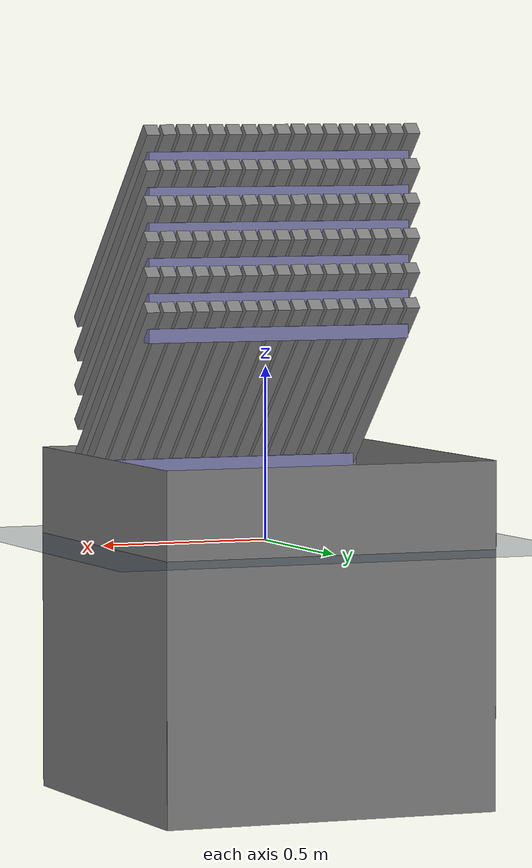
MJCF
<mujoco>
  <default>
    <default class="wall">
      <geom type="plane" size=".5 .5 .05"/>
    </default>
    <default class="plank">
      <geom type="box" size=".02 .02 .4" euler="-45 0 0"/>
      <default class="joist">
        <geom euler="0 90 0" rgba=".5 .5 .7 1"/>
      </default>
    </default>
  </default>
​
  <statistic extent="1.5" meansize=".05"/>
​
  <visual>
    <rgba haze="0.15 0.25 0.35 1"/>
    <quality shadowsize="4096"/>
    <map stiffness="700" shadowscale="0.5" fogstart="10" fogend="15" zfar="40" haze="0.3"/>
  </visual>
​
  <asset>
    <texture type="skybox" builtin="gradient" rgb1="0.3 0.5 0.7" rgb2="0 0 0" width="512" height="512"/>
    <texture name="texplane" type="2d" builtin="checker" rgb1=".2 .3 .4" rgb2=".1 0.15 0.2"
      width="512" height="512" mark="cross" markrgb=".8 .8 .8"/>
    <material name="matplane" reflectance="0.3" texture="texplane" texrepeat="1 1" texuniform="true"/>
  </asset>
​
  <worldbody>
    <light directional="true" diffuse=".4 .4 .4" specular="0.1 0.1 0.1" pos="0 0 5.0" dir="0 0 -1" castshadow="false"/>
    <light directional="true" diffuse=".6 .6 .6" specular="0.2 0.2 0.2" pos="0 0 4" dir="0 0 -1"/>
​
    <geom name="ground" type="plane" size="0 0 1" pos="0 0 0" quat="1 0 0 0" material="matplane" condim="1"/>
    <geom name="+x" class="wall" zaxis="1 0 0"  pos="-.5 0 -.25"/>
    <geom name="-x" class="wall" zaxis="-1 0 0" pos=".5 0 -.25"/>
    <geom name="+y" class="wall" zaxis="0 1 0"  pos="0 -.5 -.25"/>
    <geom name="-y" class="wall" zaxis="0 -1 0" pos="0 .5 -.25"/>
​
    <body pos="-.4 -.4 .4">
      <freejoint/>
      <geom class="plank" pos="0 .25 0"/>
      <geom class="plank" pos=".05 .25 0"/>
      <geom class="plank" pos=".10 .25 0"/>
      <geom class="plank" pos=".15 .25 0"/>
      <geom class="plank" pos=".20 .25 0"/>
      <geom class="plank" pos=".25 .25 0"/>
      <geom class="plank" pos=".30 .25 0"/>
      <geom class="plank" pos=".35 .25 0"/>
      <geom class="plank" pos=".40 .25 0"/>
      <geom class="plank" pos=".45 .25 0"/>
      <geom class="plank" pos=".50 .25 0"/>
      <geom class="plank" pos=".55 .25 0"/>
      <geom class="plank" pos=".60 .25 0"/>
      <geom class="plank" pos=".65 .25 0"/>
      <geom class="plank" pos=".70 .25 0"/>
      <geom class="plank" pos=".75 .25 0"/>
      <geom class="plank" pos=".80 .25 0"/>
      <geom class="joist" pos=".40 .09 -.2"/>
      <geom class="joist" pos=".40 .49 .2"/>
    </body>
​
    <body pos="-.4 -.4 .5">
      <freejoint/>
      <geom class="plank" pos="0 .25 0"/>
      <geom class="plank" pos=".05 .25 0"/>
      <geom class="plank" pos=".10 .25 0"/>
      <geom class="plank" pos=".15 .25 0"/>
      <geom class="plank" pos=".20 .25 0"/>
      <geom class="plank" pos=".25 .25 0"/>
      <geom class="plank" pos=".30 .25 0"/>
      <geom class="plank" pos=".35 .25 0"/>
      <geom class="plank" pos=".40 .25 0"/>
      <geom class="plank" pos=".45 .25 0"/>
      <geom class="plank" pos=".50 .25 0"/>
      <geom class="plank" pos=".55 .25 0"/>
      <geom class="plank" pos=".60 .25 0"/>
      <geom class="plank" pos=".65 .25 0"/>
      <geom class="plank" pos=".70 .25 0"/>
      <geom class="plank" pos=".75 .25 0"/>
      <geom class="plank" pos=".80 .25 0"/>
      <geom class="joist" pos=".40 .09 -.2"/>
      <geom class="joist" pos=".40 .49 .2"/>
    </body>
​
    <body pos="-.4 -.4 .6">
      <freejoint/>
      <geom class="plank" pos="0 .25 0"/>
      <geom class="plank" pos=".05 .25 0"/>
      <geom class="plank" pos=".10 .25 0"/>
      <geom class="plank" pos=".15 .25 0"/>
      <geom class="plank" pos=".20 .25 0"/>
      <geom class="plank" pos=".25 .25 0"/>
      <geom class="plank" pos=".30 .25 0"/>
      <geom class="plank" pos=".35 .25 0"/>
      <geom class="plank" pos=".40 .25 0"/>
      <geom class="plank" pos=".45 .25 0"/>
      <geom class="plank" pos=".50 .25 0"/>
      <geom class="plank" pos=".55 .25 0"/>
      <geom class="plank" pos=".60 .25 0"/>
      <geom class="plank" pos=".65 .25 0"/>
      <geom class="plank" pos=".70 .25 0"/>
      <geom class="plank" pos=".75 .25 0"/>
      <geom class="plank" pos=".80 .25 0"/>
      <geom class="joist" pos=".40 .09 -.2"/>
      <geom class="joist" pos=".40 .49 .2"/>
    </body>
​
    <body pos="-.4 -.4 .7">
      <freejoint/>
      <geom class="plank" pos="0 .25 0"/>
      <geom class="plank" pos=".05 .25 0"/>
      <geom class="plank" pos=".10 .25 0"/>
      <geom class="plank" pos=".15 .25 0"/>
      <geom class="plank" pos=".20 .25 0"/>
      <geom class="plank" pos=".25 .25 0"/>
      <geom class="plank" pos=".30 .25 0"/>
      <geom class="plank" pos=".35 .25 0"/>
      <geom class="plank" pos=".40 .25 0"/>
      <geom class="plank" pos=".45 .25 0"/>
      <geom class="plank" pos=".50 .25 0"/>
      <geom class="plank" pos=".55 .25 0"/>
      <geom class="plank" pos=".60 .25 0"/>
      <geom class="plank" pos=".65 .25 0"/>
      <geom class="plank" pos=".70 .25 0"/>
      <geom class="plank" pos=".75 .25 0"/>
      <geom class="plank" pos=".80 .25 0"/>
      <geom class="joist" pos=".40 .09 -.2"/>
      <geom class="joist" pos=".40 .49 .2"/>
    </body>
​
    <body pos="-.4 -.4 .8">
      <freejoint/>
      <geom class="plank" pos="0 .25 0"/>
      <geom class="plank" pos=".05 .25 0"/>
      <geom class="plank" pos=".10 .25 0"/>
      <geom class="plank" pos=".15 .25 0"/>
      <geom class="plank" pos=".20 .25 0"/>
      <geom class="plank" pos=".25 .25 0"/>
      <geom class="plank" pos=".30 .25 0"/>
      <geom class="plank" pos=".35 .25 0"/>
      <geom class="plank" pos=".40 .25 0"/>
      <geom class="plank" pos=".45 .25 0"/>
      <geom class="plank" pos=".50 .25 0"/>
      <geom class="plank" pos=".55 .25 0"/>
      <geom class="plank" pos=".60 .25 0"/>
      <geom class="plank" pos=".65 .25 0"/>
      <geom class="plank" pos=".70 .25 0"/>
      <geom class="plank" pos=".75 .25 0"/>
      <geom class="plank" pos=".80 .25 0"/>
      <geom class="joist" pos=".40 .09 -.2"/>
      <geom class="joist" pos=".40 .49 .2"/>
    </body>
​
    <body pos="-.4 -.4 .9">
      <freejoint/>
      <geom class="plank" pos="0 .25 0"/>
      <geom class="plank" pos=".05 .25 0"/>
      <geom class="plank" pos=".10 .25 0"/>
      <geom class="plank" pos=".15 .25 0"/>
      <geom class="plank" pos=".20 .25 0"/>
      <geom class="plank" pos=".25 .25 0"/>
      <geom class="plank" pos=".30 .25 0"/>
      <geom class="plank" pos=".35 .25 0"/>
      <geom class="plank" pos=".40 .25 0"/>
      <geom class="plank" pos=".45 .25 0"/>
      <geom class="plank" pos=".50 .25 0"/>
      <geom class="plank" pos=".55 .25 0"/>
      <geom class="plank" pos=".60 .25 0"/>
      <geom class="plank" pos=".65 .25 0"/>
      <geom class="plank" pos=".70 .25 0"/>
      <geom class="plank" pos=".75 .25 0"/>
      <geom class="plank" pos=".80 .25 0"/>
      <geom class="joist" pos=".40 .09 -.2"/>
      <geom class="joist" pos=".40 .49 .2"/>
    </body>
  </worldbody>
</mujoco>
